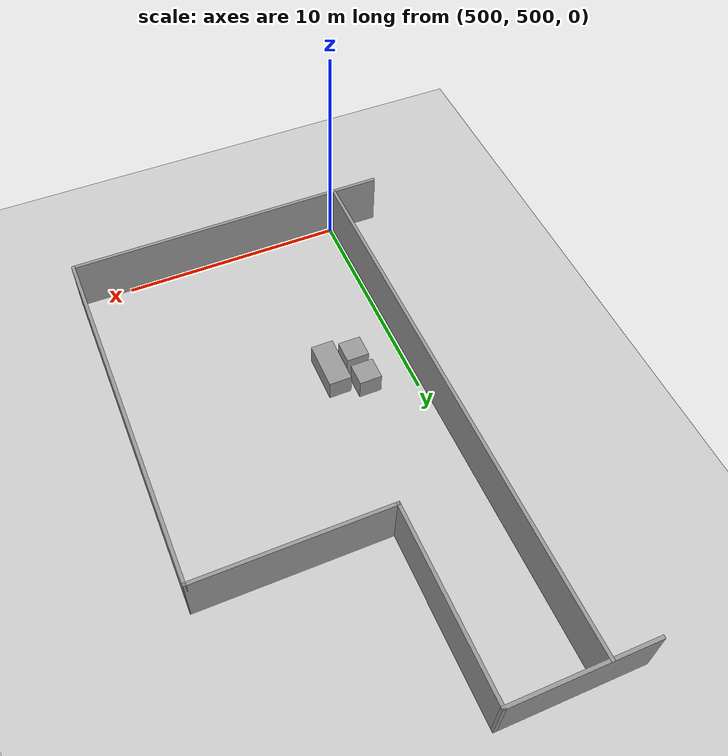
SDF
<sdf version="1.6">
 <world name="default">
  <light name="sun" type="directional">
   <cast_shadows>0</cast_shadows>
   <pose>0 0 10 0 -0 0</pose>
   <diffuse>0.8 0.8 0.8 1</diffuse>
   <specular>0.1 0.1 0.1 1</specular>
   <attenuation>
    <range>1000</range>
    <constant>0.9</constant>
    <linear>0.01</linear>
    <quadratic>0.001</quadratic>
   </attenuation>
   <direction>-0.5 0.5 -1</direction>
  </light>
  <model name="ground_plane">
   <pose>492 488 0 0 -0 0</pose>
   <static>1</static>
   <link name="link">
    <collision name="collision">
     <geometry><plane><normal>0 0 1</normal><size>100 100</size></plane></geometry>
     <surface><friction><ode><mu>100</mu><mu2>50</mu2></ode></friction></surface>
    </collision>
    <visual name="visual">
     <cast_shadows>0</cast_shadows>
     <geometry><plane><normal>0 0 1</normal><size>100 100</size></plane></geometry>
     <material>
      <script><uri>file://media/materials/scripts/gazebo.material</uri><name>Gazebo/Grey</name></script>
     </material>
    </visual>
   </link>
  </model>
  <gravity>0 0 -9.8</gravity>
  <magnetic_field>6e-06 2.3e-05 -4.2e-05</magnetic_field>
  <atmosphere type="adiabatic"/>
  <physics name="default_physics" default="0" type="ode">
   <max_step_size>0.001</max_step_size>
   <real_time_factor>1</real_time_factor>
   <real_time_update_rate>1000</real_time_update_rate>
  </physics>
  <scene><ambient>0.4 0.4 0.4 1</ambient><background>0.7 0.7 0.7 1</background><shadows>0</shadows></scene>
  <spherical_coordinates>
   <surface_model>EARTH_WGS84</surface_model>
   <latitude_deg>0</latitude_deg>
   <longitude_deg>0</longitude_deg>
   <elevation>0</elevation>
   <heading_deg>0</heading_deg>
  </spherical_coordinates>
  <model name="agvr_0">
   <pose>505 512 0 0 -0 0</pose>
   <link name="Wall_0">
    <collision name="Wall_0_Collision">
     <geometry><box><size>24.25 0.15 2.5</size></box></geometry>
     <pose>0 -2 1.25 0 -0 0</pose>
    </collision>
    <visual name="Wall_0_Visual">
     <pose>0 -2 1.25 0 -0 0</pose>
     <geometry><box><size>24.25 0.15 2.5</size></box></geometry>
     <material>
      <script><uri>file://media/materials/scripts/gazebo.material</uri><name>Gazebo/Grey</name></script>
      <ambient>1 1 1 1</ambient>
     </material>
    </visual>
    <pose>-7.23325 0.051559 0 0 -0 1.5708</pose>
   </link>
   <link name="Wall_10">
    <collision name="Wall_10_Collision">
     <geometry><box><size>8.25 0.15 2.5</size></box></geometry>
     <pose>0 0 1.25 0 -0 0</pose>
    </collision>
    <visual name="Wall_10_Visual">
     <pose>0 0 1.25 0 -0 0</pose>
     <geometry><box><size>8.25 0.15 2.5</size></box></geometry>
     <material>
      <script><uri>file://media/materials/scripts/gazebo.material</uri><name>Gazebo/Grey</name></script>
      <ambient>1 1 1 1</ambient>
     </material>
    </visual>
    <pose>-1.08706 8.05286 0 0 -0 1.5708</pose>
   </link>
   <link name="Wall_13">
    <collision name="Wall_13_Collision">
     <geometry><box><size>6.29619 0.15 2.5</size></box></geometry>
     <pose>0 0 1.25 0 -0 0</pose>
    </collision>
    <visual name="Wall_13_Visual">
     <pose>0 0 1.25 0 -0 0</pose>
     <geometry><box><size>6.29619 0.15 2.5</size></box></geometry>
     <material>
      <script><uri>file://media/materials/scripts/gazebo.material</uri><name>Gazebo/Grey</name></script>
      <ambient>1 1 1 1</ambient>
     </material>
    </visual>
    <pose>-4.16015 12.1022 0 0 -0 0.000211</pose>
   </link>
   <link name="Wall_15">
    <collision name="Wall_15_Collision">
     <geometry><box><size>8.45374 0.15 2.5</size></box></geometry>
     <pose>0 0 1.25 0 -0 0</pose>
    </collision>
    <visual name="Wall_15_Visual">
     <pose>0 0 1.25 0 -0 0</pose>
     <geometry><box><size>8.45374 0.15 2.5</size></box></geometry>
     <material>
      <script><uri>file://media/materials/scripts/gazebo.material</uri><name>Gazebo/Grey</name></script>
      <ambient>1 1 1 1</ambient>
     </material>
    </visual>
    <pose>3.06481 4.00286 0 0 -0 0</pose>
   </link>
   <link name="Wall_16">
    <collision name="Wall_16_Collision">
     <geometry><box><size>16.25 0.15 2.5</size></box></geometry>
     <pose>0 0 1.25 0 -0 0</pose>
    </collision>
    <visual name="Wall_16_Visual">
     <pose>0 0 1.25 0 -0 0</pose>
     <geometry><box><size>16.25 0.15 2.5</size></box></geometry>
     <material>
      <script><uri>file://media/materials/scripts/gazebo.material</uri><name>Gazebo/Grey</name></script>
      <ambient>1 1 1 1</ambient>
     </material>
    </visual>
    <pose>7.23981 -4.04714 0 0 0 -1.5708</pose>
   </link>
   <link name="Wall_18">
    <collision name="Wall_18_Collision">
     <geometry><box><size>14.6296 0.15 2.5</size></box></geometry>
     <pose>0 0 1.25 0 -0 0</pose>
    </collision>
    <visual name="Wall_18_Visual">
     <pose>0 0 1.25 0 -0 0</pose>
     <geometry><box><size>14.6296 0.15 2.5</size></box></geometry>
     <material>
      <script><uri>file://media/materials/scripts/gazebo.material</uri><name>Gazebo/Grey</name></script>
      <ambient>1 1 1 1</ambient>
     </material>
    </visual>
    <pose>0 -12.1 0 0 0 -3.1412</pose>
   </link>
   <static>1</static>
  </model>
  <model name="unit_box_0">
   <pose>502.125 507.757 0.499995 0 1e-05 0</pose>
   <link name="link">
    <inertial>
     <mass>1</mass>
     <inertia>
      <ixx>0.166667</ixx>
      <ixy>0</ixy>
      <ixz>0</ixz>
      <iyy>0.166667</iyy>
      <iyz>0</iyz>
      <izz>0.166667</izz>
     </inertia>
    </inertial>
    <collision name="collision"><geometry><box><size>1 1 1</size></box></geometry></collision>
    <visual name="visual">
     <geometry><box><size>1 1 1</size></box></geometry>
     <material>
      <script><name>Gazebo/Grey</name><uri>file://media/materials/scripts/gazebo.material</uri></script>
     </material>
    </visual>
   </link>
  </model>
  <model name="unit_box_1">
   <pose>502.097 509.058 0.499995 0 -1e-05 0</pose>
   <link name="link">
    <inertial>
     <mass>1</mass>
     <inertia>
      <ixx>0.166667</ixx>
      <ixy>0</ixy>
      <ixz>0</ixz>
      <iyy>0.166667</iyy>
      <iyz>0</iyz>
      <izz>0.166667</izz>
     </inertia>
    </inertial>
    <collision name="collision"><geometry><box><size>1 1 1</size></box></geometry></collision>
    <visual name="visual">
     <geometry><box><size>1 1 1</size></box></geometry>
     <material>
      <script><name>Gazebo/Grey</name><uri>file://media/materials/scripts/gazebo.material</uri></script>
     </material>
    </visual>
   </link>
  </model>
  <model name="unit_box_2">
   <pose>503.303 508.051 0.5 0 -0 0</pose>
   <link name="link">
    <inertial>
     <mass>1</mass>
     <inertia>
      <ixx>0.166667</ixx>
      <ixy>0</ixy>
      <ixz>0</ixz>
      <iyy>0.166667</iyy>
      <iyz>0</iyz>
      <izz>0.166667</izz>
     </inertia>
    </inertial>
    <collision name="collision"><geometry><box><size>1 2.11448 1</size></box></geometry></collision>
    <visual name="visual">
     <geometry><box><size>1 2.11448 1</size></box></geometry>
     <material>
      <script><name>Gazebo/Grey</name><uri>file://media/materials/scripts/gazebo.material</uri></script>
     </material>
    </visual>
   </link>
  </model>
 </world>
</sdf>
